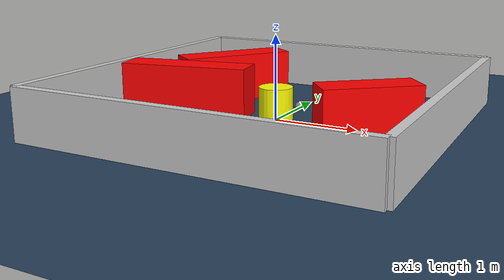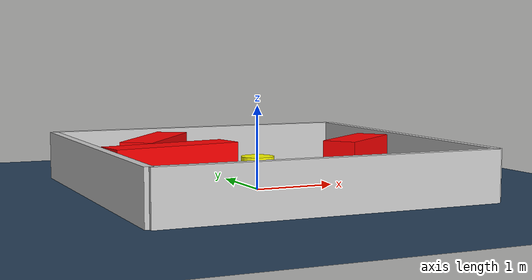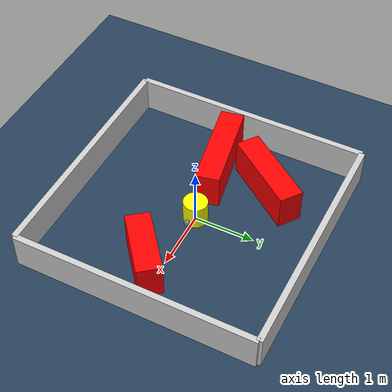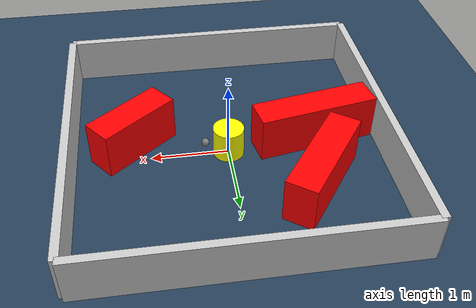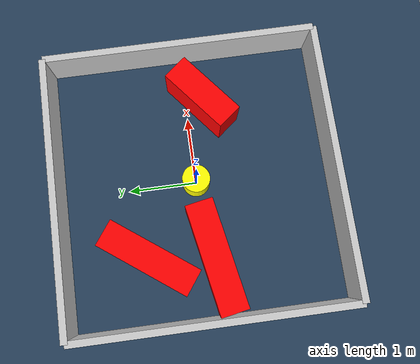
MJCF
<?xml version="1.0" ?>
<mujoco model="generated_environment">
  <option timestep="0.01" integrator="RK4" cone="elliptic"/>
  <default>
    <geom density="1"/>
  </default>
  <asset>
    <texture builtin="gradient" height="3072" rgb1="0.3 0.5 0.7" rgb2="0 0 0" type="skybox" width="512"/>
    <texture builtin="checker" height="300" mark="edge" markrgb="0.8 0.8 0.8" name="groundplane" rgb1="0.2 0.3 0.4" rgb2="0.1 0.2 0.3" type="2d" width="300"/>
    <material name="groundplane" reflectance="0.2" texrepeat="5 5" texture="groundplane" texuniform="true"/>
    <material name="robot" rgba="0.0 1.0 0.0 1"/>
  </asset>
  <worldbody>
    <light dir="0 0 -1" directional="true" pos="0 0 1.5"/>
    <geom condim="4" friction="1.0 0.005 0.001" material="groundplane" name="floor" size="0 0 0.05" type="plane"/>
    <body name="walls">
      <geom name="wall_1" condim="4" pos="-2.0 0.0 0.3" rgba="0.800000011920929 0.800000011920929 0.800000011920929 1.0" size="0.05 2.0 0.3" type="box"/>
      <geom name="wall_2" condim="4" pos="2.0 0.0 0.3" rgba="0.800000011920929 0.800000011920929 0.800000011920929 1.0" size="0.05 2.0 0.3" type="box"/>
      <geom name="wall_3" condim="4" pos="0.0 -2.0 0.3" rgba="0.800000011920929 0.800000011920929 0.800000011920929 1.0" size="2.0 0.05 0.3" type="box"/>
      <geom name="wall_4" condim="4" pos="0.0 2.0 0.3" rgba="0.800000011920929 0.800000011920929 0.800000011920929 1.0" size="2.0 0.05 0.3" type="box"/>
    </body>
    <body name="robot">
      <joint name="joint_x" type="slide" pos="0 0 0" axis="1 0 0"/>
      <joint name="joint_y" type="slide" pos="0 0 0" axis="0 1 0"/>
      <geom name="robot" type="sphere" pos="0.3 0.0 0.2" size="0.05" mass="5." friction="1.0 0.005 0.0001" condim="4" rgba="0.5 0.5 0.5 1.0"/>
      <site name="sensor_ball"/>
    </body>
    <body name="obstacle_movable_1">
      <geom name="obstacle_movable_1" condim="4" pos="0.0 0.0 0.2" euler="0 0 0.0" friction="1.0 0.005 0.001" rgba="1.0 1.0 0.0 1.0" size="0.2 0.2 0.0" type="cylinder" mass="0.1"/>
      <joint type="free"/>
    </body>
    <body name="obstacle_2_static">
      <geom name="obstacle_2_static" condim="4" pos="-1.1329694448551038 -0.12855738381941206 0.3" euler="0 0 10.634807806743378" friction="1.0 0.005 0.001" rgba="1 0 0 1" size="0.7832822495926723 0.2 0.3" type="box"/>
    </body>
    <body name="obstacle_3_static">
      <geom name="obstacle_3_static" condim="4" pos="-1.0270522390242394 0.7887010175521805 0.3" euler="0 0 233.87334926049445" friction="1.0 0.005 0.001" rgba="1 0 0 1" size="0.7073458100837235 0.2 0.3" type="box"/>
    </body>
    <body name="obstacle_4_static">
      <geom name="obstacle_4_static" condim="4" pos="1.2117775753514333 -0.2461634458302011 0.3" euler="0 0 218.82829650619158" friction="1.0 0.005 0.001" rgba="1 0 0 1" size="0.5481482326749956 0.2 0.3" type="box"/>
    </body>
  </worldbody>
  <actuator>
    <motor name="actuator_x" joint="joint_x" gear="1" ctrlrange="-1 1"/>
    <motor name="actuator_y" joint="joint_y" gear="1" ctrlrange="-1 1"/>
  </actuator>
</mujoco>
